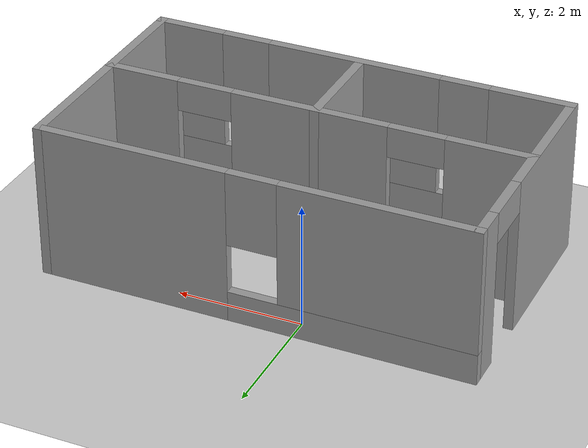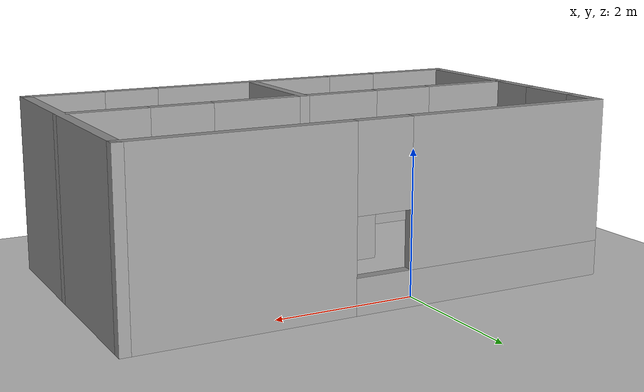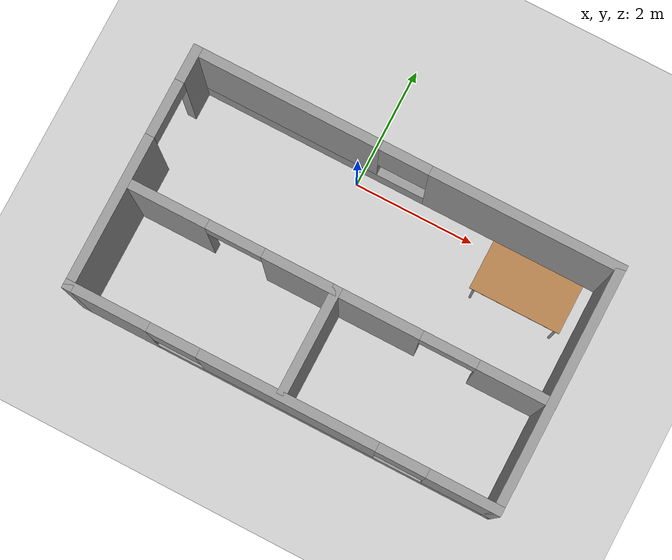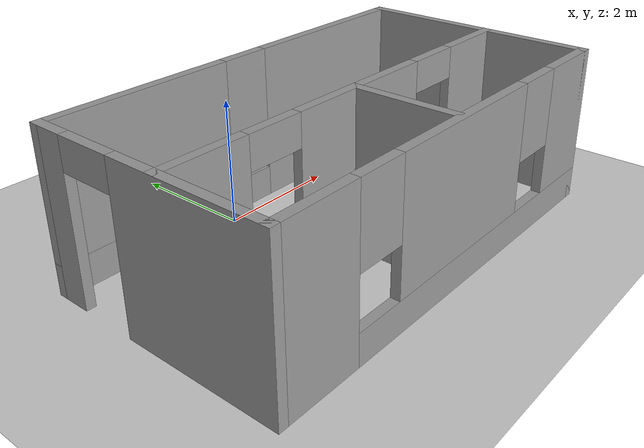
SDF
<sdf version="1.7">
 <world name="default">
  <light name="sun" type="directional">
   <pose>0 0 10 0 -0 0</pose>
   <diffuse>0.8 0.8 0.8 1</diffuse>
   <specular>0.2 0.2 0.2 1</specular>
   <attenuation>
    <range>1000</range>
    <constant>0.9</constant>
    <linear>0.01</linear>
    <quadratic>0.001</quadratic>
   </attenuation>
   <direction>-0.5 0.1 -0.9</direction>
   <spot><inner_angle>0</inner_angle><outer_angle>0</outer_angle><falloff>0</falloff></spot>
  </light>
  <model name="ground_plane">
   <static>1</static>
   <link name="link">
    <collision name="collision">
     <geometry><plane><normal>0 0 1</normal><size>100 100</size></plane></geometry>
     <surface>
      <contact><collide_bitmask>65535</collide_bitmask></contact>
      <friction><ode><mu>100</mu><mu2>50</mu2></ode></friction>
     </surface>
    </collision>
    <visual name="visual">
     <cast_shadows>0</cast_shadows>
     <geometry><plane><normal>0 0 1</normal><size>100 100</size></plane></geometry>
     <material>
      <script><uri>file://media/materials/scripts/gazebo.material</uri><name>Gazebo/Grey</name></script>
     </material>
    </visual>
   </link>
  </model>
  <gravity>0 0 -9.8</gravity>
  <magnetic_field>6e-06 2.3e-05 -4.2e-05</magnetic_field>
  <atmosphere type="adiabatic"/>
  <physics type="ode">
   <max_step_size>0.001</max_step_size>
   <real_time_factor>1</real_time_factor>
   <real_time_update_rate>1000</real_time_update_rate>
  </physics>
  <scene><ambient>0.4 0.4 0.4 1</ambient><background>0.7 0.7 0.7 1</background><shadows>1</shadows></scene>
  <audio><device>default</device></audio>
  <spherical_coordinates>
   <surface_model>EARTH_WGS84</surface_model>
   <latitude_deg>0</latitude_deg>
   <longitude_deg>0</longitude_deg>
   <elevation>0</elevation>
   <heading_deg>0</heading_deg>
  </spherical_coordinates>
  <model name="simulation">
   <pose>0.653489 -1.65025 0 0 -0 0</pose>
   <link name="Wall_1">
    <pose>-0.000739 -1.925 0 0 -0 0</pose>
    <visual name="Wall_1_Visual_0">
     <pose>-2.82128 0 1.25 0 -0 0</pose>
     <geometry><box><size>1.35743 0.15 2.5</size></box></geometry>
     <material>
      <script><uri>file://media/materials/scripts/gazebo.material</uri><name>Gazebo/Grey</name></script>
      <ambient>1 1 1 1</ambient>
     </material>
     <meta><layer>0</layer></meta>
    </visual>
    <collision name="Wall_1_Collision_0">
     <geometry><box><size>1.35743 0.15 2.5</size></box></geometry>
     <pose>-2.82128 0 1.25 0 -0 0</pose>
    </collision>
    <visual name="Wall_1_Visual_1">
     <pose>0.678717 0 0.25 0 -0 0</pose>
     <geometry><box><size>5.64257 0.15 0.5</size></box></geometry>
     <material>
      <script><uri>file://media/materials/scripts/gazebo.material</uri><name>Gazebo/Grey</name></script>
      <ambient>1 1 1 1</ambient>
     </material>
     <meta><layer>0</layer></meta>
    </visual>
    <collision name="Wall_1_Collision_1">
     <geometry><box><size>5.64257 0.15 0.5</size></box></geometry>
     <pose>0.678717 0 0.25 0 -0 0</pose>
    </collision>
    <visual name="Wall_1_Visual_2">
     <pose>0.088473 0 1.5 0 -0 0</pose>
     <geometry><box><size>2.86208 0.15 2</size></box></geometry>
     <material>
      <script><uri>file://media/materials/scripts/gazebo.material</uri><name>Gazebo/Grey</name></script>
      <ambient>1 1 1 1</ambient>
     </material>
     <meta><layer>0</layer></meta>
    </visual>
    <collision name="Wall_1_Collision_2">
     <geometry><box><size>2.86208 0.15 2</size></box></geometry>
     <pose>0.088473 0 1.5 0 -0 0</pose>
    </collision>
    <visual name="Wall_1_Visual_3">
     <pose>2.90976 0 1.5 0 -0 0</pose>
     <geometry><box><size>1.18049 0.15 2</size></box></geometry>
     <material>
      <script><uri>file://media/materials/scripts/gazebo.material</uri><name>Gazebo/Grey</name></script>
      <ambient>1 1 1 1</ambient>
     </material>
     <meta><layer>0</layer></meta>
    </visual>
    <collision name="Wall_1_Collision_3">
     <geometry><box><size>1.18049 0.15 2</size></box></geometry>
     <pose>2.90976 0 1.5 0 -0 0</pose>
    </collision>
    <visual name="Wall_1_Visual_4">
     <pose>-1.74257 0 1.9 0 -0 0</pose>
     <geometry><box><size>0.8 0.15 1.2</size></box></geometry>
     <material>
      <script><uri>file://media/materials/scripts/gazebo.material</uri><name>Gazebo/Grey</name></script>
      <ambient>1 1 1 1</ambient>
     </material>
     <meta><layer>0</layer></meta>
    </visual>
    <collision name="Wall_1_Collision_4">
     <geometry><box><size>0.8 0.15 1.2</size></box></geometry>
     <pose>-1.74257 0 1.9 0 -0 0</pose>
    </collision>
    <visual name="Wall_1_Visual_5">
     <pose>1.91951 0 1.9 0 -0 0</pose>
     <geometry><box><size>0.8 0.15 1.2</size></box></geometry>
     <material>
      <script><uri>file://media/materials/scripts/gazebo.material</uri><name>Gazebo/Grey</name></script>
      <ambient>1 1 1 1</ambient>
     </material>
     <meta><layer>0</layer></meta>
    </visual>
    <collision name="Wall_1_Collision_5">
     <geometry><box><size>0.8 0.15 1.2</size></box></geometry>
     <pose>1.91951 0 1.9 0 -0 0</pose>
    </collision>
   </link>
   <link name="Wall_11">
    <pose>0.00074 -0.236083 0 0 -0 0</pose>
    <visual name="Wall_11_Visual_0">
     <pose>-2.79699 0 1.25 0 -0 0</pose>
     <geometry><box><size>1.40601 0.15 2.5</size></box></geometry>
     <material>
      <script><uri>file://media/materials/scripts/gazebo.material</uri><name>Gazebo/Grey</name></script>
      <ambient>1 1 1 1</ambient>
     </material>
     <meta><layer>0</layer></meta>
    </visual>
    <collision name="Wall_11_Collision_0">
     <geometry><box><size>1.40601 0.15 2.5</size></box></geometry>
     <pose>-2.79699 0 1.25 0 -0 0</pose>
    </collision>
    <visual name="Wall_11_Visual_1">
     <pose>0.076989 0 1.25 0 -0 0</pose>
     <geometry><box><size>2.54195 0.15 2.5</size></box></geometry>
     <material>
      <script><uri>file://media/materials/scripts/gazebo.material</uri><name>Gazebo/Grey</name></script>
      <ambient>1 1 1 1</ambient>
     </material>
     <meta><layer>0</layer></meta>
    </visual>
    <collision name="Wall_11_Collision_1">
     <geometry><box><size>2.54195 0.15 2.5</size></box></geometry>
     <pose>0.076989 0 1.25 0 -0 0</pose>
    </collision>
    <visual name="Wall_11_Visual_2">
     <pose>2.87398 0 1.25 0 -0 0</pose>
     <geometry><box><size>1.25203 0.15 2.5</size></box></geometry>
     <material>
      <script><uri>file://media/materials/scripts/gazebo.material</uri><name>Gazebo/Grey</name></script>
      <ambient>1 1 1 1</ambient>
     </material>
     <meta><layer>0</layer></meta>
    </visual>
    <collision name="Wall_11_Collision_2">
     <geometry><box><size>1.25203 0.15 2.5</size></box></geometry>
     <pose>2.87398 0 1.25 0 -0 0</pose>
    </collision>
    <visual name="Wall_11_Visual_3">
     <pose>-1.64399 0 2.25 0 -0 0</pose>
     <geometry><box><size>0.9 0.15 0.5</size></box></geometry>
     <material>
      <script><uri>file://media/materials/scripts/gazebo.material</uri><name>Gazebo/Grey</name></script>
      <ambient>1 1 1 1</ambient>
     </material>
     <meta><layer>0</layer></meta>
    </visual>
    <collision name="Wall_11_Collision_3">
     <geometry><box><size>0.9 0.15 0.5</size></box></geometry>
     <pose>-1.64399 0 2.25 0 -0 0</pose>
    </collision>
    <visual name="Wall_11_Visual_4">
     <pose>1.79797 0 2.25 0 -0 0</pose>
     <geometry><box><size>0.9 0.15 0.5</size></box></geometry>
     <material>
      <script><uri>file://media/materials/scripts/gazebo.material</uri><name>Gazebo/Grey</name></script>
      <ambient>1 1 1 1</ambient>
     </material>
     <meta><layer>0</layer></meta>
    </visual>
    <collision name="Wall_11_Collision_4">
     <geometry><box><size>0.9 0.15 0.5</size></box></geometry>
     <pose>1.79797 0 2.25 0 -0 0</pose>
    </collision>
   </link>
   <link name="Wall_13">
    <collision name="Wall_13_Collision">
     <geometry><box><size>1.75 0.15 2.5</size></box></geometry>
     <pose>0 0 1.25 0 -0 0</pose>
    </collision>
    <visual name="Wall_13_Visual">
     <pose>0 0 1.25 0 -0 0</pose>
     <geometry><box><size>1.75 0.15 2.5</size></box></geometry>
     <material>
      <script><uri>file://media/materials/scripts/gazebo.material</uri><name>Gazebo/Grey</name></script>
      <ambient>1 1 1 1</ambient>
     </material>
     <meta><layer>0</layer></meta>
    </visual>
    <pose>-0.022328 -1.03608 0 0 -0 -1.5708</pose>
   </link>
   <link name="Wall_7">
    <collision name="Wall_7_Collision">
     <geometry><box><size>4 0.15 2.5</size></box></geometry>
     <pose>0 0 1.25 0 -0 0</pose>
    </collision>
    <visual name="Wall_7_Visual">
     <pose>0 0 1.25 0 -0 0</pose>
     <geometry><box><size>4 0.15 2.5</size></box></geometry>
     <material>
      <script><uri>file://media/materials/scripts/gazebo.material</uri><name>Gazebo/Grey</name></script>
      <ambient>1 1 1 1</ambient>
     </material>
     <meta><layer>0</layer></meta>
    </visual>
    <pose>3.42426 0 0 0 -0 1.5708</pose>
   </link>
   <link name="Wall_8">
    <pose>-0.000739 1.925 0 0 -0 3.14159</pose>
    <visual name="Wall_8_Visual_0">
     <pose>-1.93921 0 1.25 0 -0 0</pose>
     <geometry><box><size>3.12159 0.15 2.5</size></box></geometry>
     <material>
      <script><uri>file://media/materials/scripts/gazebo.material</uri><name>Gazebo/Grey</name></script>
      <ambient>1 1 1 1</ambient>
     </material>
     <meta><layer>0</layer></meta>
    </visual>
    <collision name="Wall_8_Collision_0">
     <geometry><box><size>3.12159 0.15 2.5</size></box></geometry>
     <pose>-1.93921 0 1.25 0 -0 0</pose>
    </collision>
    <visual name="Wall_8_Visual_1">
     <pose>1.56079 0 0.25 0 -0 0</pose>
     <geometry><box><size>3.87841 0.15 0.5</size></box></geometry>
     <material>
      <script><uri>file://media/materials/scripts/gazebo.material</uri><name>Gazebo/Grey</name></script>
      <ambient>1 1 1 1</ambient>
     </material>
     <meta><layer>0</layer></meta>
    </visual>
    <collision name="Wall_8_Collision_1">
     <geometry><box><size>3.87841 0.15 0.5</size></box></geometry>
     <pose>1.56079 0 0.25 0 -0 0</pose>
    </collision>
    <visual name="Wall_8_Visual_2">
     <pose>1.9608 0 1.5 0 -0 0</pose>
     <geometry><box><size>3.07841 0.15 2</size></box></geometry>
     <material>
      <script><uri>file://media/materials/scripts/gazebo.material</uri><name>Gazebo/Grey</name></script>
      <ambient>1 1 1 1</ambient>
     </material>
     <meta><layer>0</layer></meta>
    </visual>
    <collision name="Wall_8_Collision_2">
     <geometry><box><size>3.07841 0.15 2</size></box></geometry>
     <pose>1.9608 0 1.5 0 -0 0</pose>
    </collision>
    <visual name="Wall_8_Visual_3">
     <pose>0.021589 0 1.9 0 -0 0</pose>
     <geometry><box><size>0.8 0.15 1.2</size></box></geometry>
     <material>
      <script><uri>file://media/materials/scripts/gazebo.material</uri><name>Gazebo/Grey</name></script>
      <ambient>1 1 1 1</ambient>
     </material>
     <meta><layer>0</layer></meta>
    </visual>
    <collision name="Wall_8_Collision_3">
     <geometry><box><size>0.8 0.15 1.2</size></box></geometry>
     <pose>0.021589 0 1.9 0 -0 0</pose>
    </collision>
   </link>
   <link name="Wall_9">
    <pose>-3.42574 0 0 0 -0 -1.5708</pose>
    <visual name="Wall_9_Visual_0">
     <pose>-1.7073 0 1.25 0 -0 0</pose>
     <geometry><box><size>0.585401 0.15 2.5</size></box></geometry>
     <material>
      <script><uri>file://media/materials/scripts/gazebo.material</uri><name>Gazebo/Grey</name></script>
      <ambient>1 1 1 1</ambient>
     </material>
     <meta><layer>0</layer></meta>
    </visual>
    <collision name="Wall_9_Collision_0">
     <geometry><box><size>0.585401 0.15 2.5</size></box></geometry>
     <pose>-1.7073 0 1.25 0 -0 0</pose>
    </collision>
    <visual name="Wall_9_Visual_1">
     <pose>0.742701 0 1.25 0 -0 0</pose>
     <geometry><box><size>2.5146 0.15 2.5</size></box></geometry>
     <material>
      <script><uri>file://media/materials/scripts/gazebo.material</uri><name>Gazebo/Grey</name></script>
      <ambient>1 1 1 1</ambient>
     </material>
     <meta><layer>0</layer></meta>
    </visual>
    <collision name="Wall_9_Collision_1">
     <geometry><box><size>2.5146 0.15 2.5</size></box></geometry>
     <pose>0.742701 0 1.25 0 -0 0</pose>
    </collision>
    <visual name="Wall_9_Visual_2">
     <pose>-0.964599 0 2.25 0 -0 0</pose>
     <geometry><box><size>0.9 0.15 0.5</size></box></geometry>
     <material>
      <script><uri>file://media/materials/scripts/gazebo.material</uri><name>Gazebo/Grey</name></script>
      <ambient>1 1 1 1</ambient>
     </material>
     <meta><layer>0</layer></meta>
    </visual>
    <collision name="Wall_9_Collision_2">
     <geometry><box><size>0.9 0.15 0.5</size></box></geometry>
     <pose>-0.964599 0 2.25 0 -0 0</pose>
    </collision>
   </link>
   <static>1</static>
  </model>
  <model name="table">
   <static>1</static>
   <link name="link">
    <collision name="surface">
     <pose>0 0 1 0 -0 0</pose>
     <geometry><box><size>1.5 0.8 0.03</size></box></geometry>
     <surface><friction><ode><mu>0.6</mu><mu2>0.6</mu2></ode></friction></surface>
    </collision>
    <visual name="visual1">
     <pose>0 0 1 0 -0 0</pose>
     <geometry><box><size>1.5 0.8 0.03</size></box></geometry>
     <material>
      <script><uri>file://media/materials/scripts/gazebo.material</uri><name>Gazebo/Wood</name></script>
     </material>
    </visual>
    <collision name="front_left_leg">
     <pose>0.68 0.38 0.5 0 -0 0</pose>
     <geometry><cylinder><radius>0.02</radius><length>1</length></cylinder></geometry>
    </collision>
    <visual name="front_left_leg">
     <pose>0.68 0.38 0.5 0 -0 0</pose>
     <geometry><cylinder><radius>0.02</radius><length>1</length></cylinder></geometry>
     <material>
      <script><uri>file://media/materials/scripts/gazebo.material</uri><name>Gazebo/Grey</name></script>
     </material>
    </visual>
    <collision name="front_right_leg">
     <pose>0.68 -0.38 0.5 0 -0 0</pose>
     <geometry><cylinder><radius>0.02</radius><length>1</length></cylinder></geometry>
    </collision>
    <visual name="front_right_leg">
     <pose>0.68 -0.38 0.5 0 -0 0</pose>
     <geometry><cylinder><radius>0.02</radius><length>1</length></cylinder></geometry>
     <material>
      <script><uri>file://media/materials/scripts/gazebo.material</uri><name>Gazebo/Grey</name></script>
     </material>
    </visual>
    <collision name="back_right_leg">
     <pose>-0.68 -0.38 0.5 0 -0 0</pose>
     <geometry><cylinder><radius>0.02</radius><length>1</length></cylinder></geometry>
    </collision>
    <visual name="back_right_leg">
     <pose>-0.68 -0.38 0.5 0 -0 0</pose>
     <geometry><cylinder><radius>0.02</radius><length>1</length></cylinder></geometry>
     <material>
      <script><uri>file://media/materials/scripts/gazebo.material</uri><name>Gazebo/Grey</name></script>
     </material>
    </visual>
    <collision name="back_left_leg">
     <pose>-0.68 0.38 0.5 0 -0 0</pose>
     <geometry><cylinder><radius>0.02</radius><length>1</length></cylinder></geometry>
    </collision>
    <visual name="back_left_leg">
     <pose>-0.68 0.38 0.5 0 -0 0</pose>
     <geometry><cylinder><radius>0.02</radius><length>1</length></cylinder></geometry>
     <material>
      <script><uri>file://media/materials/scripts/gazebo.material</uri><name>Gazebo/Grey</name></script>
     </material>
    </visual>
   </link>
   <pose>3.03308 -0.36571 0 0 -0 0</pose>
  </model>
 </world>
</sdf>
